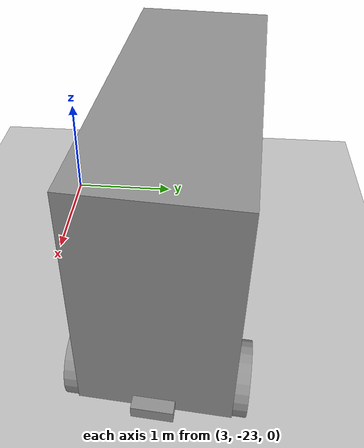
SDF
<sdf version="1.6">
 <world name="default">
  <model name="ground_plane">
   <static>1</static>
   <link name="link">
    <collision name="collision">
     <geometry><plane><normal>0 0 1</normal><size>100 100</size></plane></geometry>
     <surface><friction><ode><mu>100</mu><mu2>50</mu2></ode></friction></surface>
    </collision>
    <visual name="visual">
     <cast_shadows>0</cast_shadows>
     <geometry><plane><normal>0 0 1</normal><size>100 100</size></plane></geometry>
     <material>
      <script><uri>file://media/materials/scripts/gazebo.material</uri><name>Gazebo/Grey</name></script>
     </material>
    </visual>
   </link>
  </model>
  <model name="nuro_R2">
   <link name="link_0">
    <pose>-0.236667 0 1.13601 0 -0 0</pose>
    <inertial>
     <mass>1</mass>
     <inertia>
      <ixx>0.166667</ixx>
      <ixy>0</ixy>
      <ixz>0</ixz>
      <iyy>0.166667</iyy>
      <iyz>0</iyz>
      <izz>0.166667</izz>
     </inertia>
    </inertial>
    <visual name="visual">
     <geometry><box><size>2.74 1.1 1.86</size></box></geometry>
     <material>
      <lighting>1</lighting>
      <script><uri>file://media/materials/scripts/gazebo.material</uri><name>Gazebo/Grey</name></script>
      <shader type="pixel"><normal_map>__default__</normal_map></shader>
      <ambient>0.3 0.3 0.3 1</ambient>
      <diffuse>0.7 0.7 0.7 1</diffuse>
      <specular>0.01 0.01 0.01 1</specular>
      <emissive>0 0 0 1</emissive>
     </material>
    </visual>
    <collision name="collision">
     <geometry><box><size>2.74 1.1 1.86</size></box></geometry>
     <surface>
      <friction>
       <ode><mu>1</mu><mu2>1</mu2><fdir1>0 0 0</fdir1><slip1>0</slip1><slip2>0</slip2></ode>
       <torsional>
        <coefficient>1</coefficient>
        <patch_radius>0</patch_radius>
        <surface_radius>0</surface_radius>
        <use_patch_radius>1</use_patch_radius>
        <ode><slip>0</slip></ode>
       </torsional>
      </friction>
      <bounce><restitution_coefficient>0</restitution_coefficient><threshold>1e+06</threshold></bounce>
      <contact>
       <collide_without_contact>0</collide_without_contact>
       <collide_without_contact_bitmask>1</collide_without_contact_bitmask>
       <collide_bitmask>1</collide_bitmask>
       <ode>
        <soft_cfm>0</soft_cfm>
        <soft_erp>0.2</soft_erp>
        <kp>1e+13</kp>
        <kd>1</kd>
        <max_vel>0.01</max_vel>
        <min_depth>0</min_depth>
       </ode>
       <bullet>
        <split_impulse>1</split_impulse>
        <split_impulse_penetration_threshold>-0.01</split_impulse_penetration_threshold>
        <soft_cfm>0</soft_cfm>
        <soft_erp>0.2</soft_erp>
        <kp>1e+13</kp>
        <kd>1</kd>
       </bullet>
      </contact>
     </surface>
    </collision>
   </link>
   <link name="link_1">
    <pose>0.863333 -0.600026 0.306095 1.5707 -0 0</pose>
    <inertial>
     <mass>1</mass>
     <inertia><ixx>0.145833</ixx><ixy>0</ixy><ixz>0</ixz><iyy>0.145833</iyy><iyz>0</iyz><izz>0.125</izz></inertia>
    </inertial>
    <visual name="visual">
     <geometry><cylinder><radius>0.27</radius><length>0.1</length></cylinder></geometry>
     <material>
      <lighting>1</lighting>
      <script><uri>file://media/materials/scripts/gazebo.material</uri><name>Gazebo/Grey</name></script>
      <shader type="pixel"><normal_map>__default__</normal_map></shader>
      <ambient>0.3 0.3 0.3 1</ambient>
      <diffuse>0.7 0.7 0.7 1</diffuse>
      <specular>0.01 0.01 0.01 1</specular>
      <emissive>0 0 0 1</emissive>
     </material>
    </visual>
    <collision name="collision">
     <geometry><cylinder><radius>0.27</radius><length>0.1</length></cylinder></geometry>
     <surface>
      <friction>
       <ode><mu>1</mu><mu2>1</mu2><fdir1>0 0 0</fdir1><slip1>0</slip1><slip2>0</slip2></ode>
       <torsional>
        <coefficient>1</coefficient>
        <patch_radius>0</patch_radius>
        <surface_radius>0</surface_radius>
        <use_patch_radius>1</use_patch_radius>
        <ode><slip>0</slip></ode>
       </torsional>
      </friction>
      <bounce><restitution_coefficient>0</restitution_coefficient><threshold>1e+06</threshold></bounce>
      <contact>
       <collide_without_contact>0</collide_without_contact>
       <collide_without_contact_bitmask>1</collide_without_contact_bitmask>
       <collide_bitmask>1</collide_bitmask>
       <ode>
        <soft_cfm>0</soft_cfm>
        <soft_erp>0.2</soft_erp>
        <kp>1e+13</kp>
        <kd>1</kd>
        <max_vel>0.01</max_vel>
        <min_depth>0</min_depth>
       </ode>
       <bullet>
        <split_impulse>1</split_impulse>
        <split_impulse_penetration_threshold>-0.01</split_impulse_penetration_threshold>
        <soft_cfm>0</soft_cfm>
        <soft_erp>0.2</soft_erp>
        <kp>1e+13</kp>
        <kd>1</kd>
       </bullet>
      </contact>
     </surface>
    </collision>
   </link>
   <link name="link_1_clone">
    <pose>-1.33667 -0.600026 0.306095 1.5707 -0 0</pose>
    <inertial>
     <mass>1</mass>
     <inertia><ixx>0.145833</ixx><ixy>0</ixy><ixz>0</ixz><iyy>0.145833</iyy><iyz>0</iyz><izz>0.125</izz></inertia>
    </inertial>
    <visual name="visual">
     <geometry><cylinder><radius>0.27</radius><length>0.1</length></cylinder></geometry>
     <material>
      <lighting>1</lighting>
      <script><uri>file://media/materials/scripts/gazebo.material</uri><name>Gazebo/Grey</name></script>
      <shader type="pixel"><normal_map>__default__</normal_map></shader>
      <ambient>0.3 0.3 0.3 1</ambient>
      <diffuse>0.7 0.7 0.7 1</diffuse>
      <specular>0.01 0.01 0.01 1</specular>
      <emissive>0 0 0 1</emissive>
     </material>
    </visual>
    <collision name="collision">
     <geometry><cylinder><radius>0.27</radius><length>0.1</length></cylinder></geometry>
     <surface>
      <friction>
       <ode><mu>1</mu><mu2>1</mu2><fdir1>0 0 0</fdir1><slip1>0</slip1><slip2>0</slip2></ode>
       <torsional>
        <coefficient>1</coefficient>
        <patch_radius>0</patch_radius>
        <surface_radius>0</surface_radius>
        <use_patch_radius>1</use_patch_radius>
        <ode><slip>0</slip></ode>
       </torsional>
      </friction>
      <bounce><restitution_coefficient>0</restitution_coefficient><threshold>1e+06</threshold></bounce>
      <contact>
       <collide_without_contact>0</collide_without_contact>
       <collide_without_contact_bitmask>1</collide_without_contact_bitmask>
       <collide_bitmask>1</collide_bitmask>
       <ode>
        <soft_cfm>0</soft_cfm>
        <soft_erp>0.2</soft_erp>
        <kp>1e+13</kp>
        <kd>1</kd>
        <max_vel>0.01</max_vel>
        <min_depth>0</min_depth>
       </ode>
       <bullet>
        <split_impulse>1</split_impulse>
        <split_impulse_penetration_threshold>-0.01</split_impulse_penetration_threshold>
        <soft_cfm>0</soft_cfm>
        <soft_erp>0.2</soft_erp>
        <kp>1e+13</kp>
        <kd>1</kd>
       </bullet>
      </contact>
     </surface>
    </collision>
   </link>
   <link name="link_1_clone_0">
    <pose>0.863333 0.600026 0.306095 1.5707 -0 0</pose>
    <inertial>
     <mass>1</mass>
     <inertia><ixx>0.145833</ixx><ixy>0</ixy><ixz>0</ixz><iyy>0.145833</iyy><iyz>0</iyz><izz>0.125</izz></inertia>
    </inertial>
    <visual name="visual">
     <geometry><cylinder><radius>0.27</radius><length>0.1</length></cylinder></geometry>
     <material>
      <lighting>1</lighting>
      <script><uri>file://media/materials/scripts/gazebo.material</uri><name>Gazebo/Grey</name></script>
      <shader type="pixel"><normal_map>__default__</normal_map></shader>
      <ambient>0.3 0.3 0.3 1</ambient>
      <diffuse>0.7 0.7 0.7 1</diffuse>
      <specular>0.01 0.01 0.01 1</specular>
      <emissive>0 0 0 1</emissive>
     </material>
    </visual>
    <collision name="collision">
     <geometry><cylinder><radius>0.27</radius><length>0.1</length></cylinder></geometry>
     <surface>
      <friction>
       <ode><mu>1</mu><mu2>1</mu2><fdir1>0 0 0</fdir1><slip1>0</slip1><slip2>0</slip2></ode>
       <torsional>
        <coefficient>1</coefficient>
        <patch_radius>0</patch_radius>
        <surface_radius>0</surface_radius>
        <use_patch_radius>1</use_patch_radius>
        <ode><slip>0</slip></ode>
       </torsional>
      </friction>
      <bounce><restitution_coefficient>0</restitution_coefficient><threshold>1e+06</threshold></bounce>
      <contact>
       <collide_without_contact>0</collide_without_contact>
       <collide_without_contact_bitmask>1</collide_without_contact_bitmask>
       <collide_bitmask>1</collide_bitmask>
       <ode>
        <soft_cfm>0</soft_cfm>
        <soft_erp>0.2</soft_erp>
        <kp>1e+13</kp>
        <kd>1</kd>
        <max_vel>0.01</max_vel>
        <min_depth>0</min_depth>
       </ode>
       <bullet>
        <split_impulse>1</split_impulse>
        <split_impulse_penetration_threshold>-0.01</split_impulse_penetration_threshold>
        <soft_cfm>0</soft_cfm>
        <soft_erp>0.2</soft_erp>
        <kp>1e+13</kp>
        <kd>1</kd>
       </bullet>
      </contact>
     </surface>
    </collision>
   </link>
   <link name="link_1_clone_1">
    <pose>-1.33667 0.600026 0.306095 1.5707 -0 0</pose>
    <inertial>
     <mass>1</mass>
     <inertia><ixx>0.145833</ixx><ixy>0</ixy><ixz>0</ixz><iyy>0.145833</iyy><iyz>0</iyz><izz>0.125</izz></inertia>
    </inertial>
    <visual name="visual">
     <geometry><cylinder><radius>0.27</radius><length>0.1</length></cylinder></geometry>
     <material>
      <lighting>1</lighting>
      <script><uri>file://media/materials/scripts/gazebo.material</uri><name>Gazebo/Grey</name></script>
      <shader type="pixel"><normal_map>__default__</normal_map></shader>
      <ambient>0.3 0.3 0.3 1</ambient>
      <diffuse>0.7 0.7 0.7 1</diffuse>
      <specular>0.01 0.01 0.01 1</specular>
      <emissive>0 0 0 1</emissive>
     </material>
    </visual>
    <collision name="collision">
     <geometry><cylinder><radius>0.27</radius><length>0.1</length></cylinder></geometry>
     <surface>
      <friction>
       <ode><mu>1</mu><mu2>1</mu2><fdir1>0 0 0</fdir1><slip1>0</slip1><slip2>0</slip2></ode>
       <torsional>
        <coefficient>1</coefficient>
        <patch_radius>0</patch_radius>
        <surface_radius>0</surface_radius>
        <use_patch_radius>1</use_patch_radius>
        <ode><slip>0</slip></ode>
       </torsional>
      </friction>
      <bounce><restitution_coefficient>0</restitution_coefficient><threshold>1e+06</threshold></bounce>
      <contact>
       <collide_without_contact>0</collide_without_contact>
       <collide_without_contact_bitmask>1</collide_without_contact_bitmask>
       <collide_bitmask>1</collide_bitmask>
       <ode>
        <soft_cfm>0</soft_cfm>
        <soft_erp>0.2</soft_erp>
        <kp>1e+13</kp>
        <kd>1</kd>
        <max_vel>0.01</max_vel>
        <min_depth>0</min_depth>
       </ode>
       <bullet>
        <split_impulse>1</split_impulse>
        <split_impulse_penetration_threshold>-0.01</split_impulse_penetration_threshold>
        <soft_cfm>0</soft_cfm>
        <soft_erp>0.2</soft_erp>
        <kp>1e+13</kp>
        <kd>1</kd>
       </bullet>
      </contact>
     </surface>
    </collision>
   </link>
   <link name="link_3">
    <pose>1.18333 0 0.256011 0 -0 0</pose>
    <inertial>
     <mass>1</mass>
     <inertia>
      <ixx>0.166667</ixx>
      <ixy>0</ixy>
      <ixz>0</ixz>
      <iyy>0.166667</iyy>
      <iyz>0</iyz>
      <izz>0.166667</izz>
     </inertia>
    </inertial>
    <visual name="visual">
     <geometry><box><size>0.1 0.3 0.1</size></box></geometry>
     <material>
      <lighting>1</lighting>
      <script><uri>file://media/materials/scripts/gazebo.material</uri><name>Gazebo/Grey</name></script>
      <shader type="pixel"><normal_map>__default__</normal_map></shader>
      <ambient>0.3 0.3 0.3 1</ambient>
      <diffuse>0.7 0.7 0.7 1</diffuse>
      <specular>0.01 0.01 0.01 1</specular>
      <emissive>0 0 0 1</emissive>
     </material>
    </visual>
    <collision name="collision">
     <geometry><box><size>0.1 0.3 0.1</size></box></geometry>
     <surface>
      <friction>
       <ode><mu>1</mu><mu2>1</mu2><fdir1>0 0 0</fdir1><slip1>0</slip1><slip2>0</slip2></ode>
       <torsional>
        <coefficient>1</coefficient>
        <patch_radius>0</patch_radius>
        <surface_radius>0</surface_radius>
        <use_patch_radius>1</use_patch_radius>
        <ode><slip>0</slip></ode>
       </torsional>
      </friction>
      <bounce><restitution_coefficient>0</restitution_coefficient><threshold>1e+06</threshold></bounce>
      <contact>
       <collide_without_contact>0</collide_without_contact>
       <collide_without_contact_bitmask>1</collide_without_contact_bitmask>
       <collide_bitmask>1</collide_bitmask>
       <ode>
        <soft_cfm>0</soft_cfm>
        <soft_erp>0.2</soft_erp>
        <kp>1e+13</kp>
        <kd>1</kd>
        <max_vel>0.01</max_vel>
        <min_depth>0</min_depth>
       </ode>
       <bullet>
        <split_impulse>1</split_impulse>
        <split_impulse_penetration_threshold>-0.01</split_impulse_penetration_threshold>
        <soft_cfm>0</soft_cfm>
        <soft_erp>0.2</soft_erp>
        <kp>1e+13</kp>
        <kd>1</kd>
       </bullet>
      </contact>
     </surface>
    </collision>
   </link>
   <joint name="link_0_JOINT_0" type="revolute">
    <parent>link_0</parent>
    <child>link_1</child>
    <pose>0 0 0 -0.01 0 0</pose>
    <axis>
     <xyz>0 0 1</xyz>
     <use_parent_model_frame>0</use_parent_model_frame>
     <limit>
      <lower>-1.79769e+308</lower>
      <upper>1.79769e+308</upper>
      <effort>-1</effort>
      <velocity>-1</velocity>
     </limit>
     <dynamics>
      <spring_reference>0</spring_reference>
      <spring_stiffness>0</spring_stiffness>
      <damping>0</damping>
     </dynamics>
    </axis>
    <physics>
     <ode><limit><cfm>0</cfm><erp>0.2</erp></limit><suspension><cfm>0</cfm><erp>0.2</erp></suspension></ode>
    </physics>
   </joint>
   <joint name="link_0_JOINT_1" type="revolute">
    <parent>link_0</parent>
    <child>link_1_clone</child>
    <axis>
     <xyz>0 0 1</xyz>
     <use_parent_model_frame>0</use_parent_model_frame>
     <limit>
      <lower>-1.79769e+308</lower>
      <upper>1.79769e+308</upper>
      <effort>-1</effort>
      <velocity>-1</velocity>
     </limit>
     <dynamics>
      <spring_reference>0</spring_reference>
      <spring_stiffness>0</spring_stiffness>
      <damping>0</damping>
     </dynamics>
    </axis>
    <physics>
     <ode><limit><cfm>0</cfm><erp>0.2</erp></limit><suspension><cfm>0</cfm><erp>0.2</erp></suspension></ode>
    </physics>
   </joint>
   <joint name="link_0_JOINT_2" type="revolute">
    <parent>link_0</parent>
    <child>link_1_clone_0</child>
    <axis>
     <xyz>0 0 1</xyz>
     <use_parent_model_frame>0</use_parent_model_frame>
     <limit>
      <lower>-1.79769e+308</lower>
      <upper>1.79769e+308</upper>
      <effort>-1</effort>
      <velocity>-1</velocity>
     </limit>
     <dynamics>
      <spring_reference>0</spring_reference>
      <spring_stiffness>0</spring_stiffness>
      <damping>0</damping>
     </dynamics>
    </axis>
    <physics>
     <ode><limit><cfm>0</cfm><erp>0.2</erp></limit><suspension><cfm>0</cfm><erp>0.2</erp></suspension></ode>
    </physics>
   </joint>
   <joint name="link_0_JOINT_3" type="revolute">
    <parent>link_0</parent>
    <child>link_1_clone_1</child>
    <axis>
     <xyz>0 0 1</xyz>
     <use_parent_model_frame>0</use_parent_model_frame>
     <limit>
      <lower>-1.79769e+308</lower>
      <upper>1.79769e+308</upper>
      <effort>-1</effort>
      <velocity>-1</velocity>
     </limit>
     <dynamics>
      <spring_reference>0</spring_reference>
      <spring_stiffness>0</spring_stiffness>
      <damping>0</damping>
     </dynamics>
    </axis>
    <physics>
     <ode><limit><cfm>0</cfm><erp>0.2</erp></limit><suspension><cfm>0</cfm><erp>0.2</erp></suspension></ode>
    </physics>
   </joint>
   <joint name="link_0_JOINT_5" type="fixed">
    <parent>link_0</parent>
    <child>link_3</child>
    <physics>
     <ode><limit><cfm>0</cfm><erp>0.2</erp></limit><suspension><cfm>0</cfm><erp>0.2</erp></suspension></ode>
    </physics>
   </joint>
   <static>0</static>
   <pose>4.63837 -21.8179 -0.03609 0 1e-06 -0.073942</pose>
  </model>
 </world>
</sdf>
